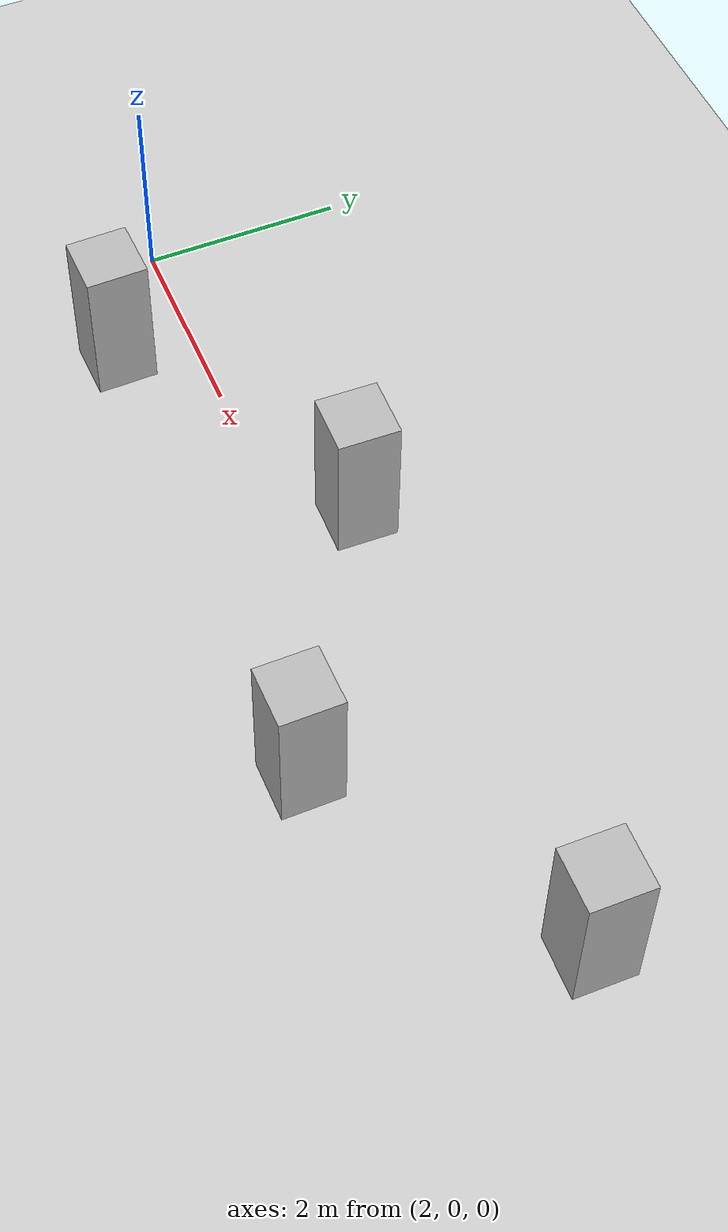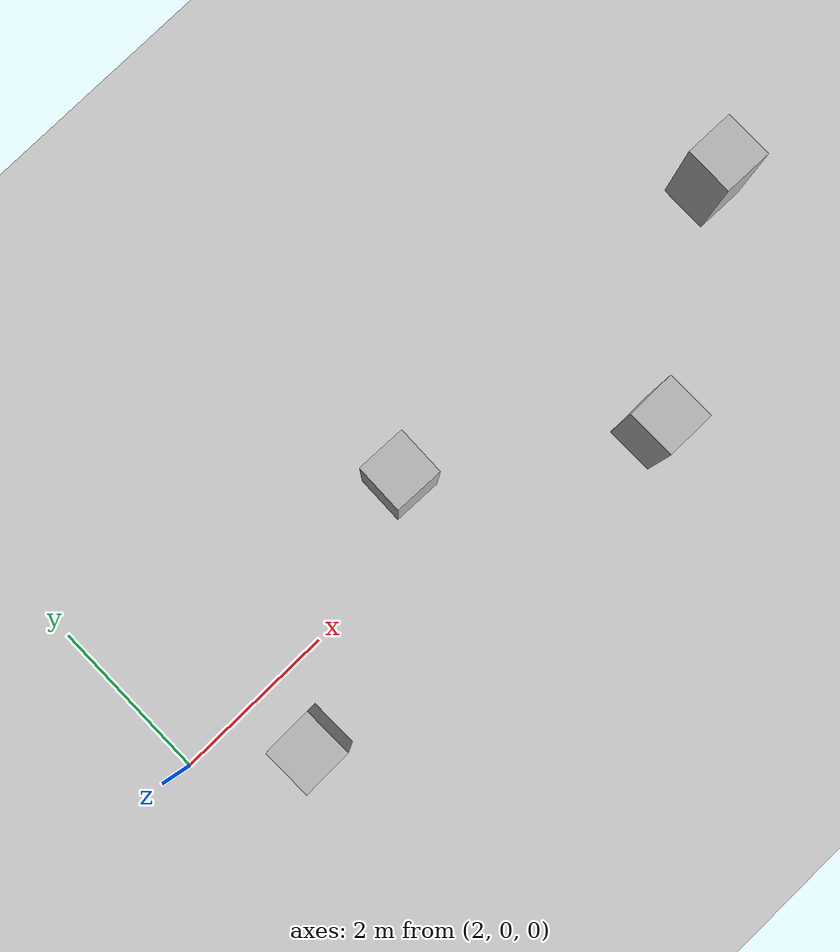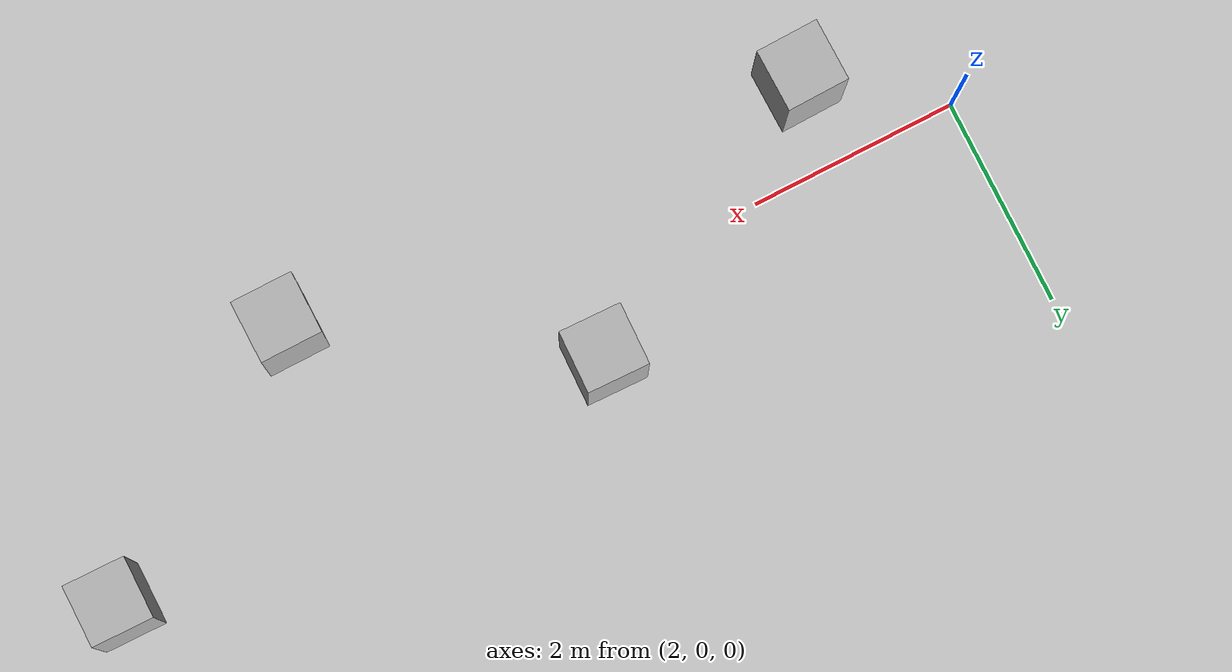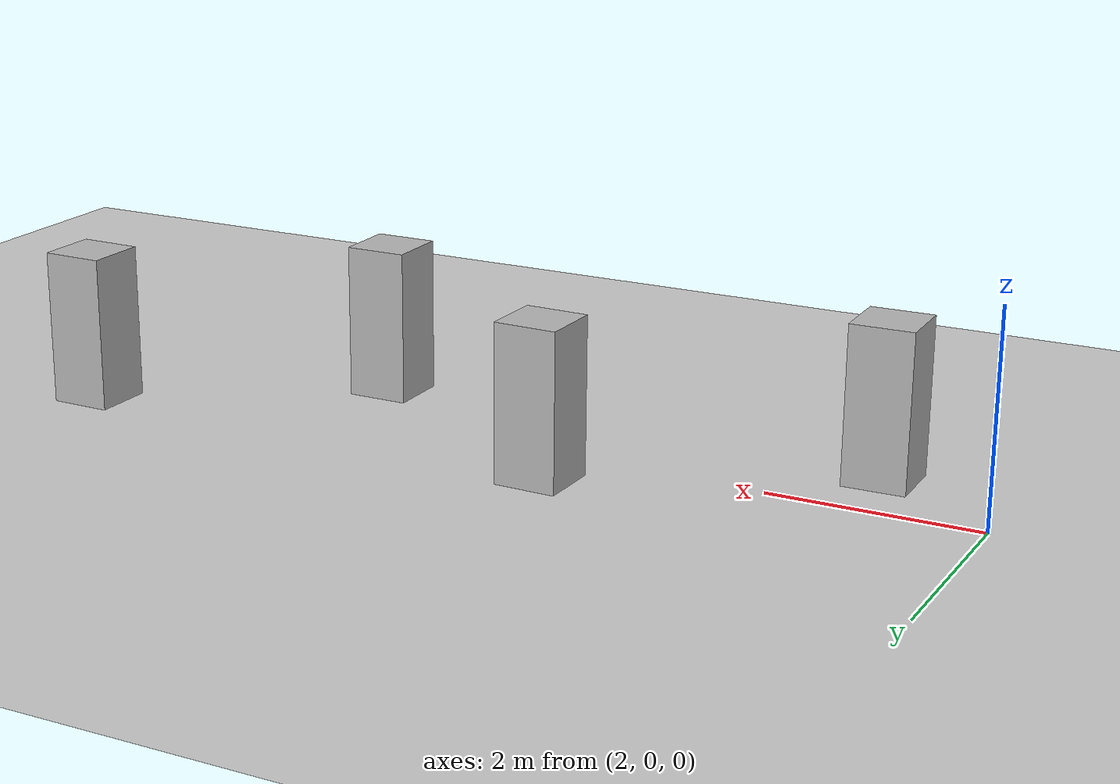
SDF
<?xml version="1.0"?>
<sdf version="1.6">
  <world name="v2-04e-static-s4703">
    <gravity>0 0 -9.81</gravity>
    <physics name="v2_deterministic" type="ode">
      <max_step_size>0.002</max_step_size>
      <real_time_update_rate>500</real_time_update_rate>
    </physics>
    <include>
      <uri>model://sun</uri>
    </include>
    <include>
      <uri>model://ground_plane</uri>
    </include>
    <model name="pillar-1">
      <static>true</static>
      <pose>3.185107574 -0.783373261 0.750000000 0 0 0.020445929</pose>
      <link name="link">
        <collision name="collision">
          <geometry>
            <box>
              <size>0.600000 0.600000 1.500000</size>
            </box>
          </geometry>
        </collision>
        <visual name="visual">
          <geometry>
            <box>
              <size>0.600000 0.600000 1.500000</size>
            </box>
          </geometry>
        </visual>
      </link>
    </model>
    <model name="pillar-2">
      <static>true</static>
      <pose>5.888280418 0.646346488 0.750000000 0 0 -0.026244156</pose>
      <link name="link">
        <collision name="collision">
          <geometry>
            <box>
              <size>0.600000 0.600000 1.500000</size>
            </box>
          </geometry>
        </collision>
        <visual name="visual">
          <geometry>
            <box>
              <size>0.600000 0.600000 1.500000</size>
            </box>
          </geometry>
        </visual>
      </link>
    </model>
    <model name="pillar-3">
      <static>true</static>
      <pose>8.330340762 -0.910162139 0.750000000 0 0 0.003455534</pose>
      <link name="link">
        <collision name="collision">
          <geometry>
            <box>
              <size>0.600000 0.600000 1.500000</size>
            </box>
          </geometry>
        </collision>
        <visual name="visual">
          <geometry>
            <box>
              <size>0.600000 0.600000 1.500000</size>
            </box>
          </geometry>
        </visual>
      </link>
    </model>
    <model name="pillar-4">
      <static>true</static>
      <pose>10.772001494 0.650494558 0.750000000 0 0 -0.016028461</pose>
      <link name="link">
        <collision name="collision">
          <geometry>
            <box>
              <size>0.600000 0.600000 1.500000</size>
            </box>
          </geometry>
        </collision>
        <visual name="visual">
          <geometry>
            <box>
              <size>0.600000 0.600000 1.500000</size>
            </box>
          </geometry>
        </visual>
      </link>
    </model>
  </world>
</sdf>
